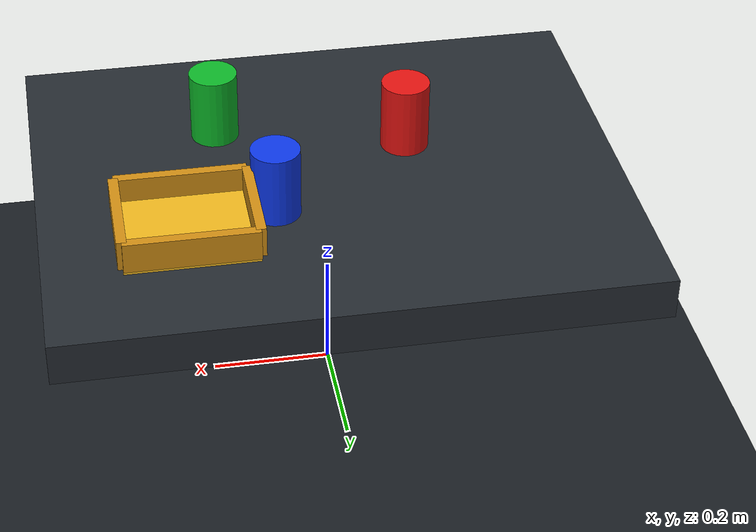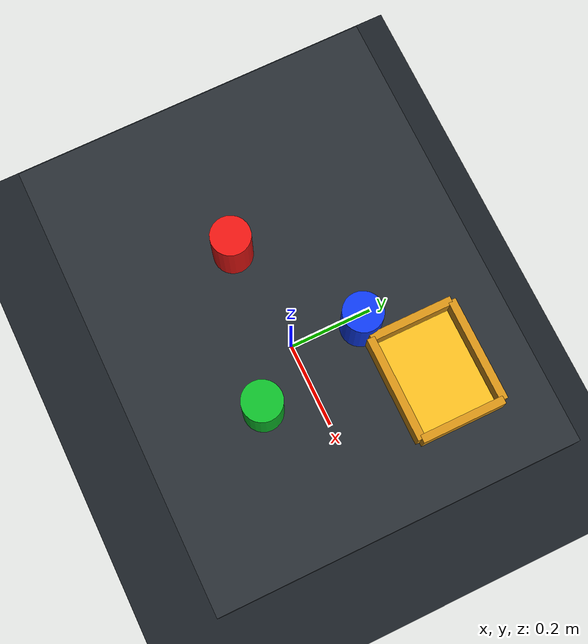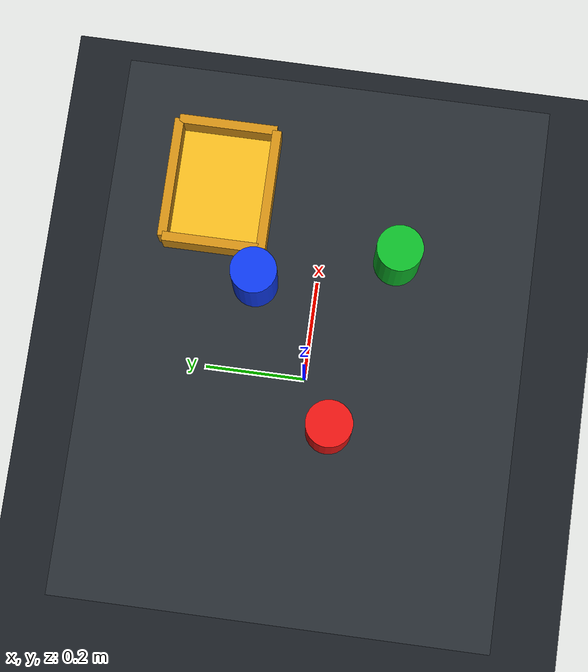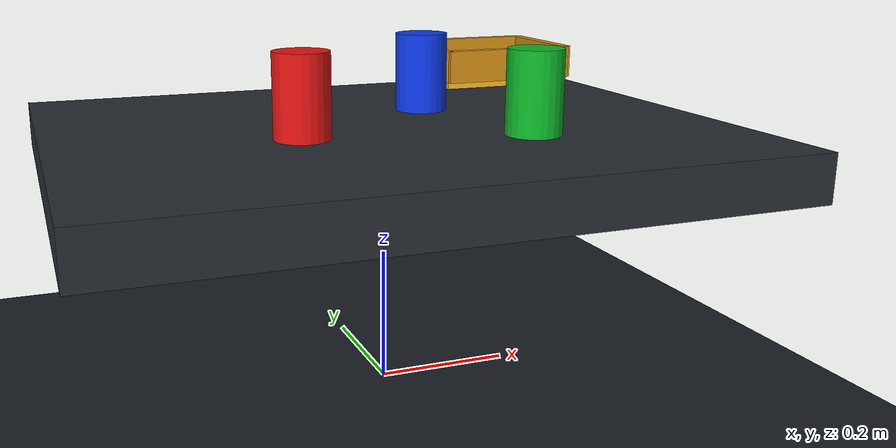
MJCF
<mujoco model="colored_cup_tabletop">
  <compiler angle="radian"/>
  <option timestep="0.002" gravity="0 0 0"/>
  <visual><rgba haze="0.12 0.15 0.20 1"/><global offwidth="640" offheight="480"/></visual>
  <asset>
    <texture name="grid" type="2d" builtin="checker" rgb1="0.18 0.20 0.23" rgb2="0.12 0.14 0.16" width="512" height="512"/>
    <material name="table_material" texture="grid" texrepeat="5 5" reflectance="0.1"/>
  </asset>
  <worldbody>
    <light name="key_light" pos="0 -0.4 1.6" dir="0 0 -1" directional="true" diffuse="1 1 1"/>
    <light name="fill_light" pos="-0.7 0.4 1.0" dir="0 0 -1" directional="true" diffuse="0.45 0.50 0.60"/>
    <geom name="floor" type="plane" size="3 3 0.1" rgba="0.10 0.12 0.14 1"/>
    <body name="table" pos="0 0 0.36"><geom name="table_top" type="box" size="0.48 0.38 0.035" material="table_material"/></body>
    <body name="red_cup" pos="-0.14 -0.06 0.455"><freejoint/><geom name="red_cup_geom" type="cylinder" size="0.040 0.060" rgba="0.90 0.08 0.07 1"/></body>
    <body name="blue_cup" pos="0.10 0.10 0.455"><freejoint/><geom name="blue_cup_geom" type="cylinder" size="0.040 0.060" rgba="0.05 0.22 0.92 1"/></body>
    <body name="green_cup" pos="0.17 -0.14 0.455"><freejoint/><geom name="green_cup_geom" type="cylinder" size="0.040 0.060" rgba="0.05 0.72 0.16 1"/></body>
    <body name="tray" pos="0.25 0.18 0.435">
      <geom name="tray_base" type="box" size="0.105 0.085 0.010" rgba="0.94 0.72 0.12 1"/>
      <geom name="tray_left" type="box" pos="-0.105 0 0.025" size="0.008 0.085 0.025" rgba="0.82 0.56 0.08 1"/>
      <geom name="tray_right" type="box" pos="0.105 0 0.025" size="0.008 0.085 0.025" rgba="0.82 0.56 0.08 1"/>
      <geom name="tray_front" type="box" pos="0 -0.085 0.025" size="0.105 0.008 0.025" rgba="0.82 0.56 0.08 1"/>
      <geom name="tray_back" type="box" pos="0 0.085 0.025" size="0.105 0.008 0.025" rgba="0.82 0.56 0.08 1"/>
    </body>
    <camera name="camera_fixed" pos="0 -1.10 0.95" xyaxes="1 0 0 0 0.447 0.894" fovy="45"/>
  </worldbody>
</mujoco>
